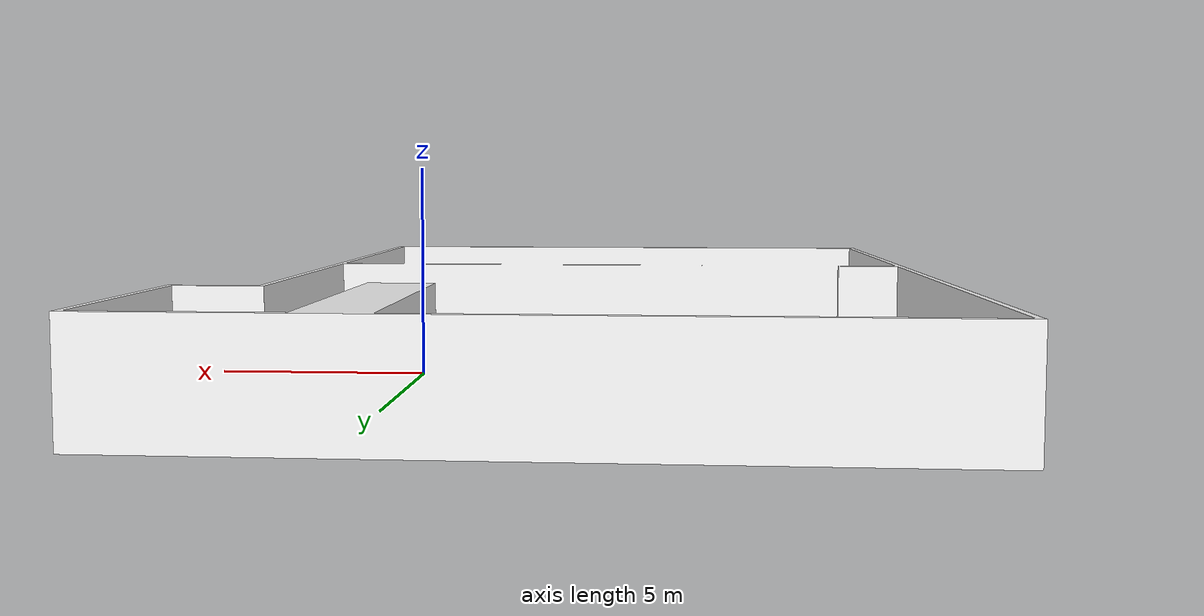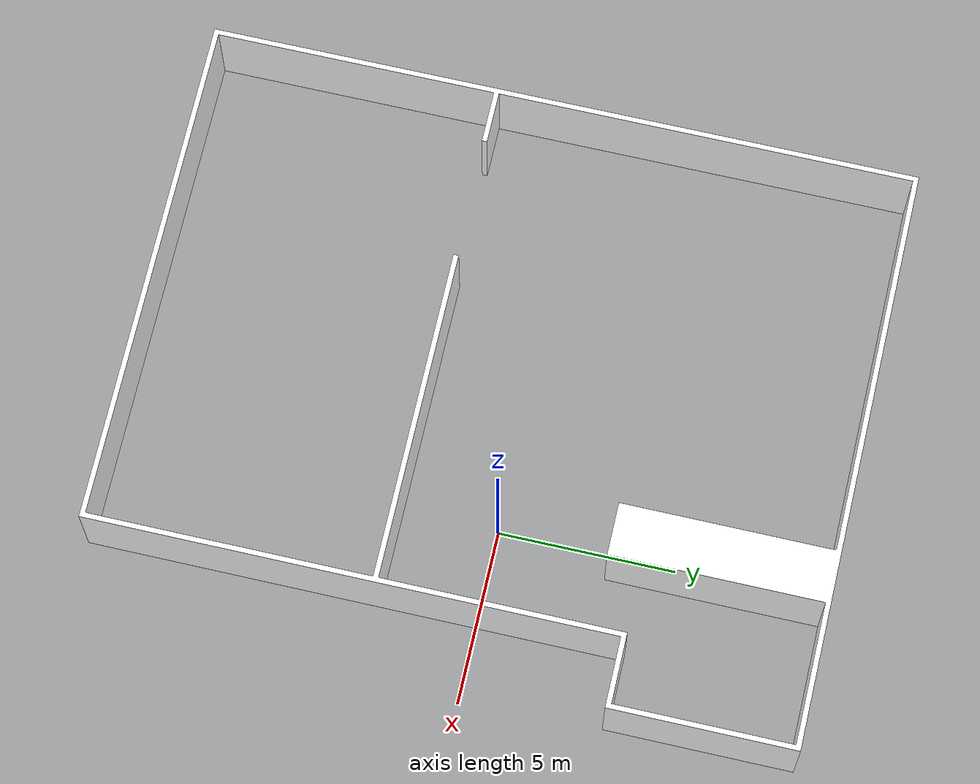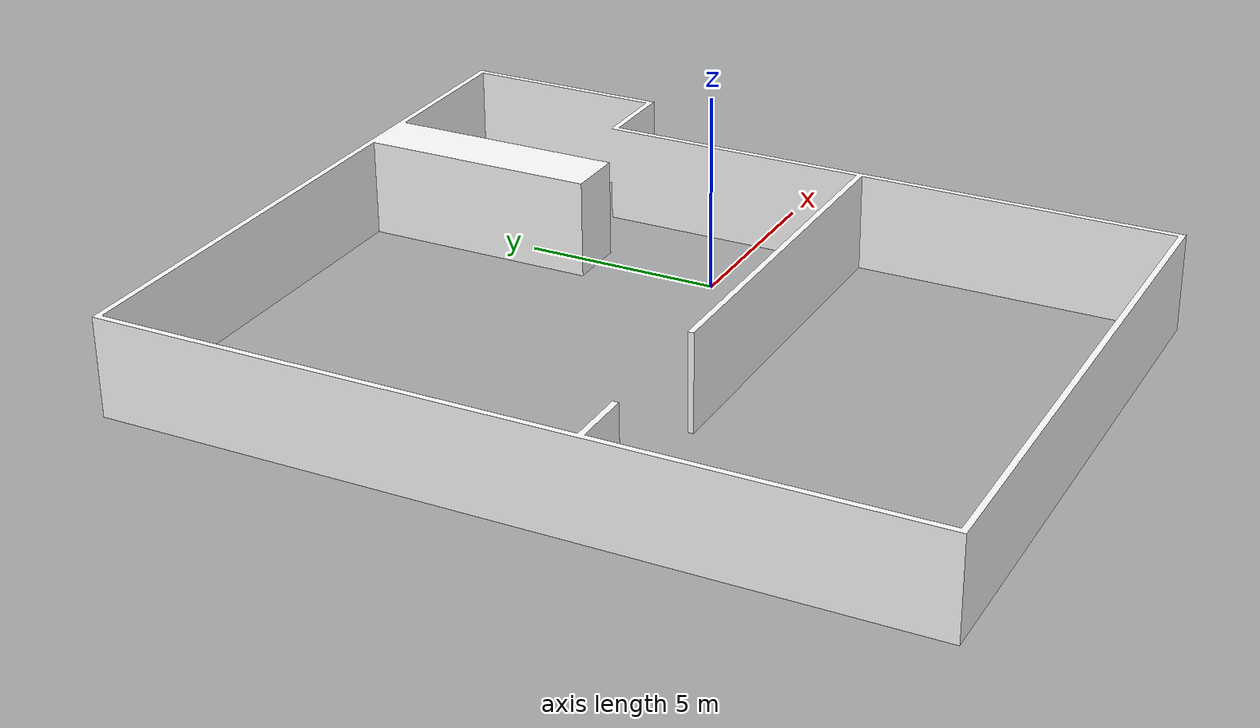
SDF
<?xml version="1.0" ?>
<sdf version="1.5">
  <model name="restaurant">
    <link name="link">
      <pose>0 0 0 0 0 0</pose>
      <collision name="collision">
        <geometry>
          <mesh>
            <uri>model://restaurant/meshes/walls.dae</uri>
          </mesh>
        </geometry>
      </collision>
      <visual name="visual">
        <geometry>
          <mesh>
            <uri>model://restaurant/meshes/walls.dae</uri>
          </mesh>
        </geometry>
      </visual>
    </link>
    <static>1</static>
  </model>
</sdf>
